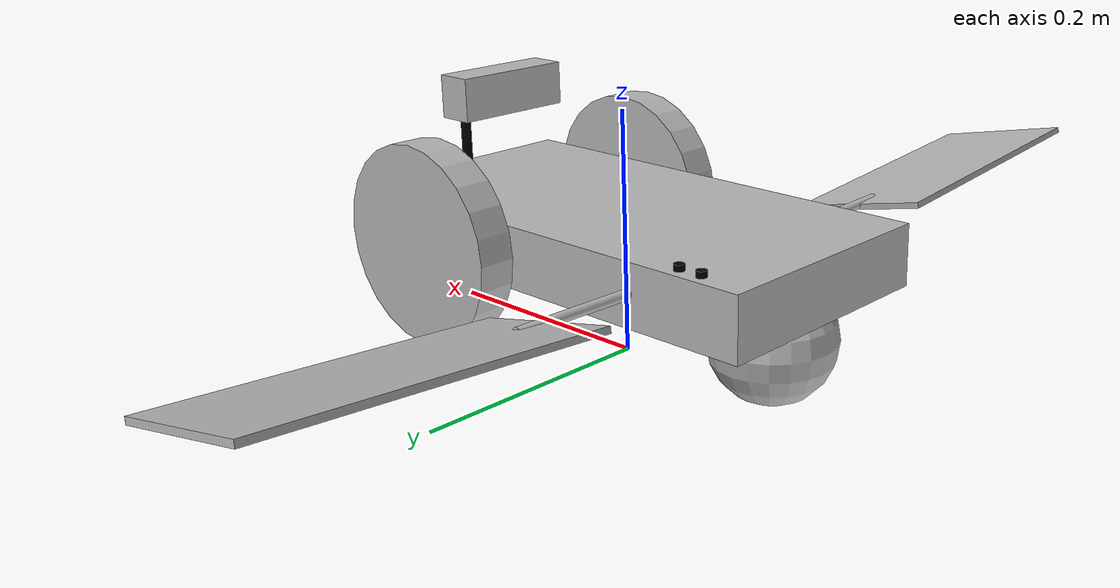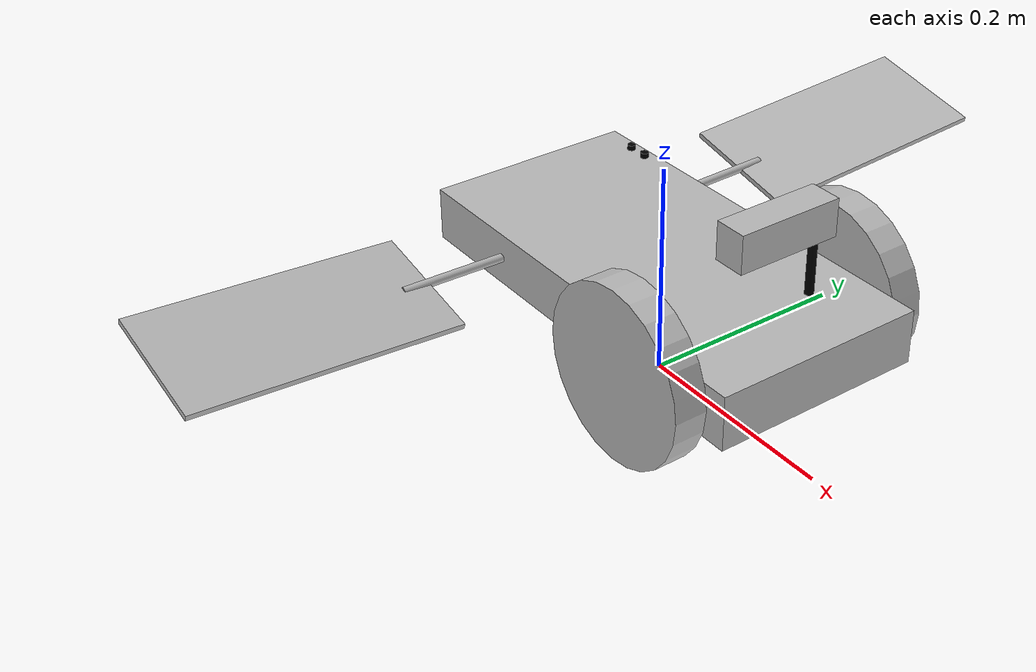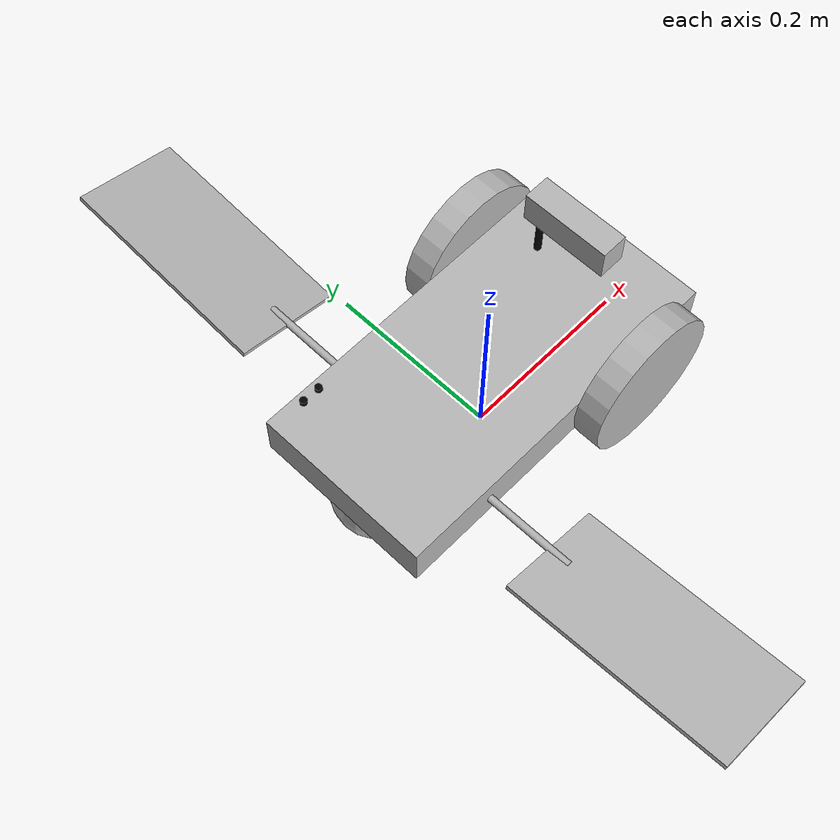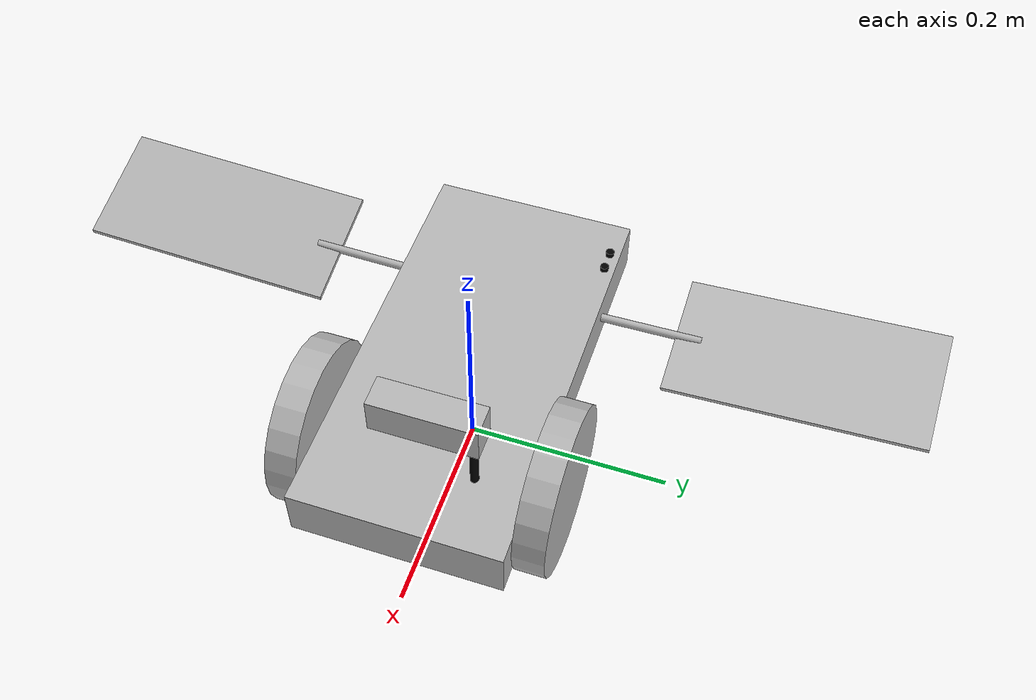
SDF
<?xml version='1.0'?>
<sdf version='1.4'>
  <model name="my_robot">
    <static>false</static>

        <link name='chassis'>
            <pose>0 0 .1 0 0 0</pose>

            <collision name='collision'>
              <geometry>
                <box>
                  <size>.4 .2 .05</size>
                </box>
              </geometry>
            </collision>

            <visual name='solar_panel_L'>
             <pose>-0.1 0.30 0.01 0.07 0.21 0</pose>
                 <geometry>
                     <box>
                      <size>0.12 0.25 0.005</size>
                    </box>
                </geometry>
                <material>
                    <script>
                       <uri>model://tuc_robot_v1/materials/scripts</uri>
                       <uri>model://tuc_robot_v1/materials/textures</uri>
                       <name>Panel/Normal</name>
                    </script>
                </material>
            </visual>
            <visual name='solar_panel_bracket_L'>
                <pose>-0.1 0.15 0.002 -1.55 0 0</pose>
                 <geometry>
                  <cylinder>
                     <radius>0.004</radius>
                     <length>0.1</length>
                   </cylinder>
             </geometry>
             </visual>

            <visual name='visual'>
              <geometry>
                <box>
                  <size>.4 .2 .05</size>
                </box>
              </geometry>

              <material>
                    <script>
                       <uri>model://tuc_robot_v1/materials/scripts</uri>
                       <uri>model://tuc_robot_v1/materials/textures</uri>
                       <name>Rover/Normal</name>
                    </script>
                </material>
            </visual>

            <visual name='solar_panel_bracket_R'>
                <pose>-0.1 -0.15 0.002 1.55 -0 0</pose>
                    <geometry>
                         <cylinder>
                          <radius>0.004</radius>
                          <length>0.1</length>
                         </cylinder>
                     </geometry>
            </visual>
          <visual name='solar_panel_R'>
            <pose>-0.1 -0.30 0.01 -0.07 0.21 -0</pose>
            <geometry>
              <box>
                <size>0.12 0.25 0.005</size>
              </box>
            </geometry>
            <material>
                <script>
                   <uri>model://tuc_robot_v1/materials/scripts</uri>
                   <uri>model://tuc_robot_v1/materials/textures</uri>
                   <name>Panel/Normal</name>
                </script>
            </material>
          </visual>

          <visual name='camera_bracket'>
                 <pose>0.13 0.05 0.05 0 -0 0</pose>
                         <geometry>
                          <cylinder>
                           <radius>0.004</radius>
                           <length>0.1</length>
                             </cylinder>
                            </geometry>
                <material>
                      <ambient>0.8 0.8 0.8 1</ambient>
                      <diffuse>0 0 0 1</diffuse>
                      <specular>0 0 0 1</specular>
                      <emissive>0 0 0 1</emissive>
                </material>
                <transparency>0</transparency>
                <cast_shadows>1</cast_shadows>
          </visual>

          <visual name='camera'>
                <pose>0.13 0.01 0.10 0 -0 0</pose>
                <geometry>
                  <box>
                    <size>0.03 0.1 0.035</size>
                  </box>
                </geometry>
               <material>
                    <script>
                       <uri>model://tuc_robot_v1/materials/scripts</uri>
                       <uri>model://tuc_robot_v1/materials/textures</uri>
                       <name>Camera/Normal</name>
                    </script>
                </material>
                <transparency>0</transparency>
                <cast_shadows>1</cast_shadows>
          </visual>

           <visual name='indexer_2'>
                 <pose>-0.14 0.09 0.02 0 -0 0</pose>
                 <geometry>
                     <cylinder>
                           <radius>0.004</radius>
                            <length>0.02</length>
                     </cylinder>
                 </geometry>
                 <material>
                  <ambient>0 0 0 1</ambient>
                  <diffuse>0 0 0 1</diffuse>
                  <specular>0 0 0 1</specular>
                  <emissive>1 1 0 1</emissive>
                </material>
                <transparency>0</transparency>
                <cast_shadows>1</cast_shadows>
            </visual>
            <visual name="indexer_1">
                <pose>-0.16 0.09 0.02 0 -0 0</pose>
                <geometry>
                  <cylinder>
                    <radius>0.004</radius>
                    <length>0.02</length>
                  </cylinder>
                </geometry>
                <material>
                      <ambient>0 0 0 1</ambient>
                      <diffuse>0 0 0 1</diffuse>
                      <specular>0 0 0 1</specular>
                      <emissive>0 1 0 1</emissive>
                </material>
                <transparency>0</transparency>
                <cast_shadows>1</cast_shadows>
             </visual>

            <collision name='caster_collision'>
            <pose>-0.15 0 -0.05 0 0 0</pose>
            <geometry>
                <sphere>
                <radius>.05</radius>
              </sphere>
            </geometry>

            <surface>
              <friction>
                <ode>
                  <mu>0</mu>
                  <mu2>0</mu2>
                  <slip1>1.0</slip1>
                  <slip2>1.0</slip2>
                </ode>
              </friction>
            </surface>
          </collision>

          <visual name='caster_visual'>
            <pose>-0.15 0 -0.05 0 0 0</pose>
            <geometry>
              <sphere>
                <radius>.05</radius>
              </sphere>
            </geometry>

            <material>
                <script>
                   <uri>model://tuc_robot_v1/materials/scripts</uri>
                   <uri>model://tuc_robot_v1/materials/textures</uri>
                   <name>Wheel/Normal</name>
                </script>
            </material>
          </visual>
          </link>

        <link name="left_wheel">
        <pose>0.1 0.115 0.1 0 1.5707 1.5707</pose>
        <collision name="collision">
          <geometry>
            <cylinder>
              <radius>.08</radius>
              <length>.03</length>
            </cylinder>
          </geometry>
        </collision>
        <visual name="visual">
          <geometry>
            <cylinder>
              <radius>.08</radius>
              <length>.03</length>
            </cylinder>
          </geometry>
          <material>
                <script>
                   <uri>model://tuc_robot_v1/materials/scripts</uri>
                   <uri>model://tuc_robot_v1/materials/textures</uri>
                   <name>Wheel/Normal</name>
                </script>
        </material>
        </visual>
      </link>

       <link name="right_wheel">
        <pose>0.1 -0.115 0.1 0 1.5707 1.5707</pose>
        <collision name="collision">
          <geometry>
            <cylinder>
              <radius>.08</radius>
              <length>.03</length>
            </cylinder>
          </geometry>
        </collision>
        <visual name="visual">
          <geometry>
            <cylinder>
              <radius>.08</radius>
              <length>.03</length>
            </cylinder>
          </geometry>
          <material>
                <script>
                   <uri>model://tuc_robot_v1/materials/scripts</uri>
                   <uri>model://tuc_robot_v1/materials/textures</uri>
                   <name>Wheel/Normal</name>
                </script>
        </material>
        </visual>
      </link>

        <joint type="revolute" name="left_wheel_hinge">
        <pose>0 0 -0.03 0 0 0</pose>
        <child>left_wheel</child>
        <parent>chassis</parent>
        <axis>
          <xyz>0 1 0</xyz>
        </axis>
      </joint>

      <joint type="revolute" name="right_wheel_hinge">
        <pose>0 0 0.03 0 0 0</pose>
        <child>right_wheel</child>
        <parent>chassis</parent>
        <axis>
          <xyz>0 1 0</xyz>
        </axis>
      </joint>

  </model>
</sdf>
